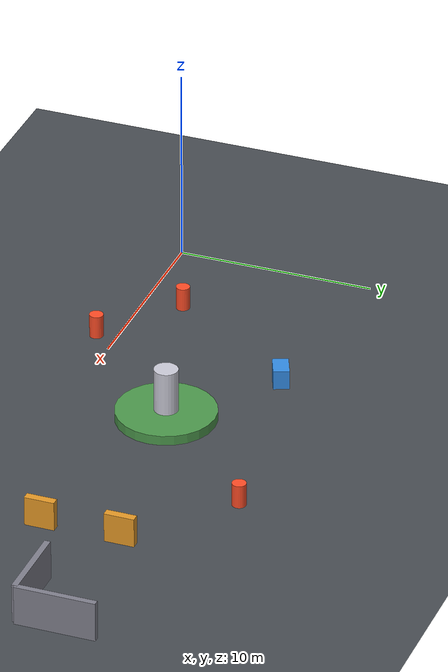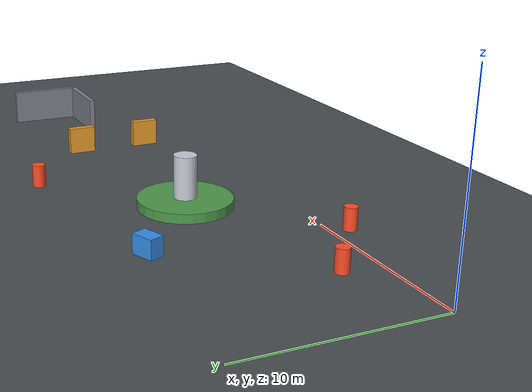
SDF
<?xml version="1.0"?>
<sdf version="1.9">
  <world name="dynamic_traffic">
    <plugin filename="gz-sim-physics-system" name="gz::sim::systems::Physics"/>
    <plugin filename="gz-sim-user-commands-system" name="gz::sim::systems::UserCommands"/>
    <plugin filename="gz-sim-scene-broadcaster-system" name="gz::sim::systems::SceneBroadcaster"/>
    <plugin filename="gz-sim-sensors-system" name="gz::sim::systems::Sensors">
      <render_engine>ogre2</render_engine>
    </plugin>
    <plugin filename="gz-sim-imu-system" name="gz::sim::systems::Imu"/>

    <gravity>0 0 -9.81</gravity>
    <physics name="dynamic_physics" type="ode">
      <max_step_size>0.002</max_step_size>
      <real_time_factor>1.0</real_time_factor>
      <real_time_update_rate>500</real_time_update_rate>
    </physics>

    <scene>
      <ambient>0.6 0.6 0.65 1.0</ambient>
      <background>0.5 0.6 0.7 1.0</background>
      <shadows>true</shadows>
      <grid>false</grid>
    </scene>

    <light name="sun" type="directional">
      <pose>15 10 30 0.5 -0.3 0.1</pose>
      <direction>-0.35 0.2 -0.9</direction>
      <diffuse>0.95 0.95 0.92 1.0</diffuse>
      <specular>0.3 0.3 0.3 1.0</specular>
      <attenuation><range>100</range></attenuation>
      <cast_shadows>true</cast_shadows>
    </light>

    <!-- Test Track Ground 60m x 40m -->
    <model name="test_ground">
      <static>true</static>
      <pose>20 10 0 0 0 0</pose>
      <link name="ground_link">
        <collision name="collision">
          <geometry><plane><normal>0 0 1</normal><size>65 45</size></plane></geometry>
          <surface><friction><ode><mu>0.9</mu><mu2>0.9</mu2></ode></friction></surface>
        </collision>
        <visual name="visual">
          <geometry><plane><normal>0 0 1</normal><size>65 45</size></plane></geometry>
          <material>
            <ambient>0.2 0.22 0.24 1</ambient>
            <diffuse>0.28 0.3 0.32 1</diffuse>
          </material>
        </visual>
      </link>
    </model>

    <!-- Central Traffic Roundabout Island (x=15, y=5, radius=3m) -->
    <model name="roundabout_island">
      <static>true</static>
      <pose>15 5 0.25 0 0 0</pose>
      <link name="island_link">
        <collision name="c"><geometry><cylinder><radius>2.5</radius><length>0.5</length></cylinder></geometry></collision>
        <visual name="v"><geometry><cylinder><radius>2.5</radius><length>0.5</length></cylinder></geometry><material><ambient>0.2 0.45 0.2 1</ambient><diffuse>0.3 0.6 0.3 1</diffuse></material></visual>
      </link>
    </model>

    <!-- Center Monument on Roundabout -->
    <model name="roundabout_pillar">
      <static>true</static>
      <pose>15 5 1.5 0 0 0</pose>
      <link name="pillar_link">
        <collision name="c"><geometry><cylinder><radius>0.6</radius><length>2.5</length></cylinder></geometry></collision>
        <visual name="v"><geometry><cylinder><radius>0.6</radius><length>2.5</length></cylinder></geometry><material><ambient>0.7 0.7 0.75 1</ambient><diffuse>0.8 0.8 0.85 1</diffuse></material></visual>
      </link>
    </model>

    <!-- Slalom & Obstacle Chicane 1: Sudden pop-up cylinder obstacle in straight path -->
    <model name="obstacle_pillar_1">
      <static>true</static>
      <pose>5 2 0.6 0 0 0</pose>
      <link name="link">
        <collision name="c"><geometry><cylinder><radius>0.35</radius><length>1.2</length></cylinder></geometry></collision>
        <visual name="v"><geometry><cylinder><radius>0.35</radius><length>1.2</length></cylinder></geometry><material><ambient>0.9 0.2 0.1 1</ambient><diffuse>1.0 0.3 0.15 1</diffuse></material></visual>
      </link>
    </model>

    <!-- Slalom Obstacle 2 -->
    <model name="obstacle_pillar_2">
      <static>true</static>
      <pose>9 -1 0.6 0 0 0</pose>
      <link name="link">
        <collision name="c"><geometry><cylinder><radius>0.35</radius><length>1.2</length></cylinder></geometry></collision>
        <visual name="v"><geometry><cylinder><radius>0.35</radius><length>1.2</length></cylinder></geometry><material><ambient>0.9 0.2 0.1 1</ambient><diffuse>1.0 0.3 0.15 1</diffuse></material></visual>
      </link>
    </model>

    <!-- Slalom Obstacle 3 -->
    <model name="obstacle_pillar_3">
      <static>true</static>
      <pose>21 11 0.6 0 0 0</pose>
      <link name="link">
        <collision name="c"><geometry><cylinder><radius>0.35</radius><length>1.2</length></cylinder></geometry></collision>
        <visual name="v"><geometry><cylinder><radius>0.35</radius><length>1.2</length></cylinder></geometry><material><ambient>0.9 0.2 0.1 1</ambient><diffuse>1.0 0.3 0.15 1</diffuse></material></visual>
      </link>
    </model>

    <!-- Narrow Gate / Tunnel Choke Point (Tests lateral clearance & MPPI evasion) -->
    <model name="choke_left">
      <static>true</static>
      <pose>26 3 0.75 0 0 0</pose>
      <link name="l"><collision name="c"><geometry><box><size>0.4 1.5 1.5</size></box></geometry></collision><visual name="v"><geometry><box><size>0.4 1.5 1.5</size></box></geometry><material><ambient>0.8 0.5 0.1 1</ambient><diffuse>0.9 0.6 0.15 1</diffuse></material></visual></link>
    </model>
    <model name="choke_right">
      <static>true</static>
      <pose>26 7 0.75 0 0 0</pose>
      <link name="l"><collision name="c"><geometry><box><size>0.4 1.5 1.5</size></box></geometry></collision><visual name="v"><geometry><box><size>0.4 1.5 1.5</size></box></geometry><material><ambient>0.8 0.5 0.1 1</ambient><diffuse>0.9 0.6 0.15 1</diffuse></material></visual></link>
    </model>

    <!-- Blind Corner Obstacle Wall (L-shape to test radar/lidar dynamic detection of emerging obstacles) -->
    <model name="blind_wall_1">
      <static>true</static>
      <pose>32 5 1.0 0 0 0</pose>
      <link name="l"><collision name="c"><geometry><box><size>4.0 0.3 2.0</size></box></geometry></collision><visual name="v"><geometry><box><size>4.0 0.3 2.0</size></box></geometry><material><ambient>0.4 0.4 0.45 1</ambient><diffuse>0.5 0.5 0.55 1</diffuse></material></visual></link>
    </model>
    <model name="blind_wall_2">
      <static>true</static>
      <pose>34 7 1.0 0 0 1.5708</pose>
      <link name="l"><collision name="c"><geometry><box><size>4.0 0.3 2.0</size></box></geometry></collision><visual name="v"><geometry><box><size>4.0 0.3 2.0</size></box></geometry><material><ambient>0.4 0.4 0.45 1</ambient><diffuse>0.5 0.5 0.55 1</diffuse></material></visual></link>
    </model>

    <!-- Simulated Cross-Traffic Obstacle Pod (x=10, y=9, size 1.0m cube) -->
    <model name="traffic_pod">
      <static>true</static>
      <pose>10 9 0.5 0 0 0.4</pose>
      <link name="l">
        <collision name="c"><geometry><box><size>1.2 0.8 1.0</size></box></geometry></collision>
        <visual name="v"><geometry><box><size>1.2 0.8 1.0</size></box></geometry><material><ambient>0.1 0.4 0.7 1</ambient><diffuse>0.2 0.55 0.9 1</diffuse></material></visual>
      </link>
    </model>
  </world>
</sdf>
